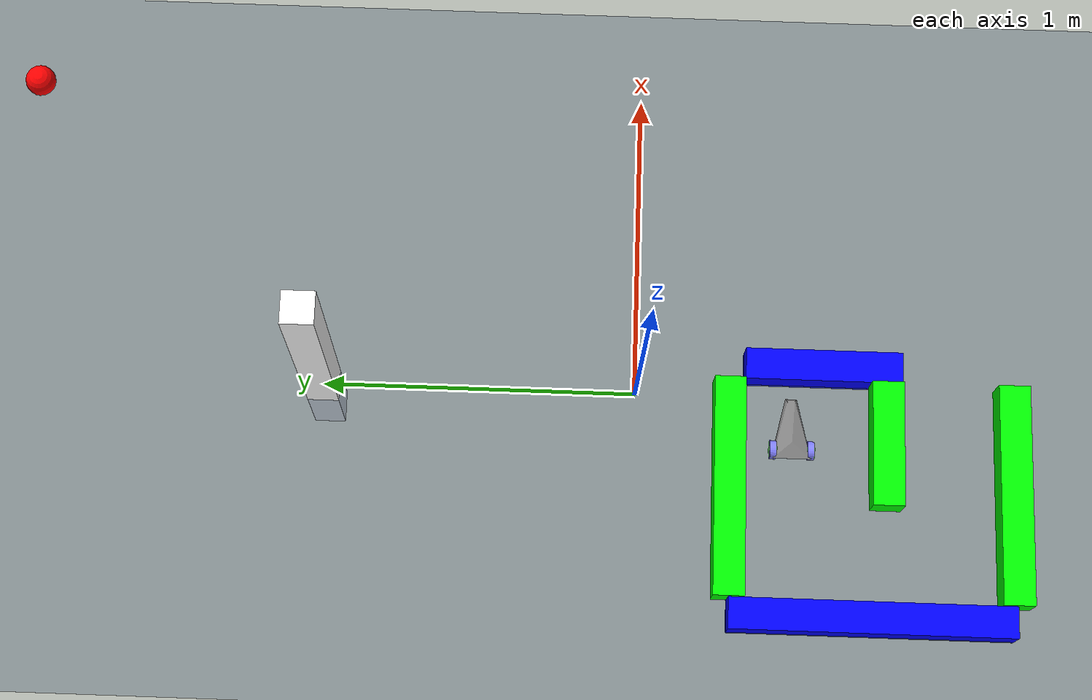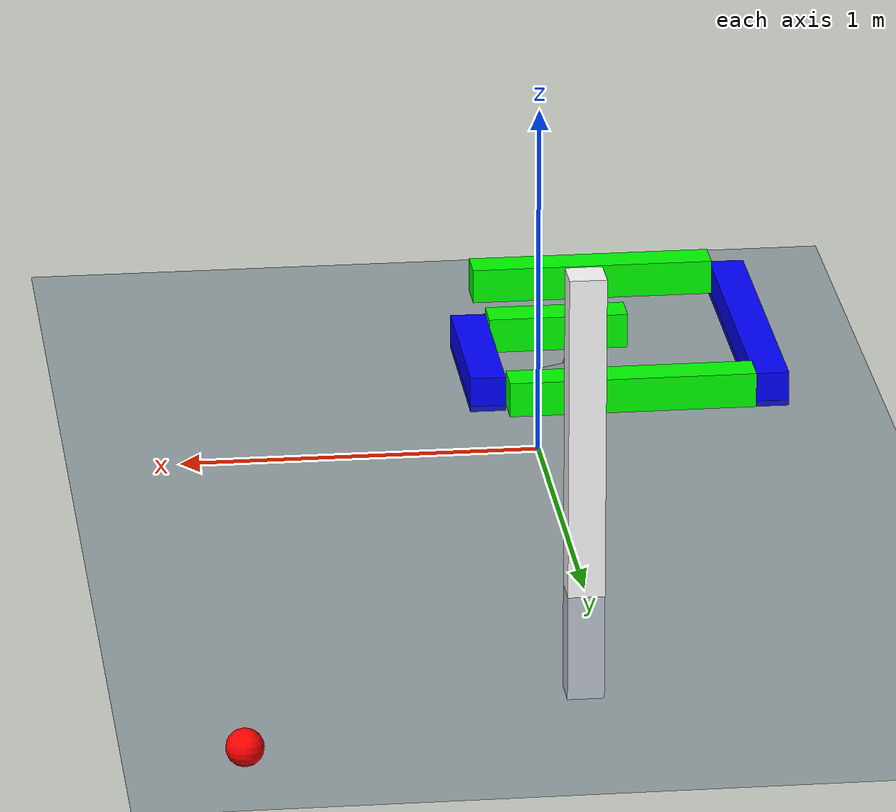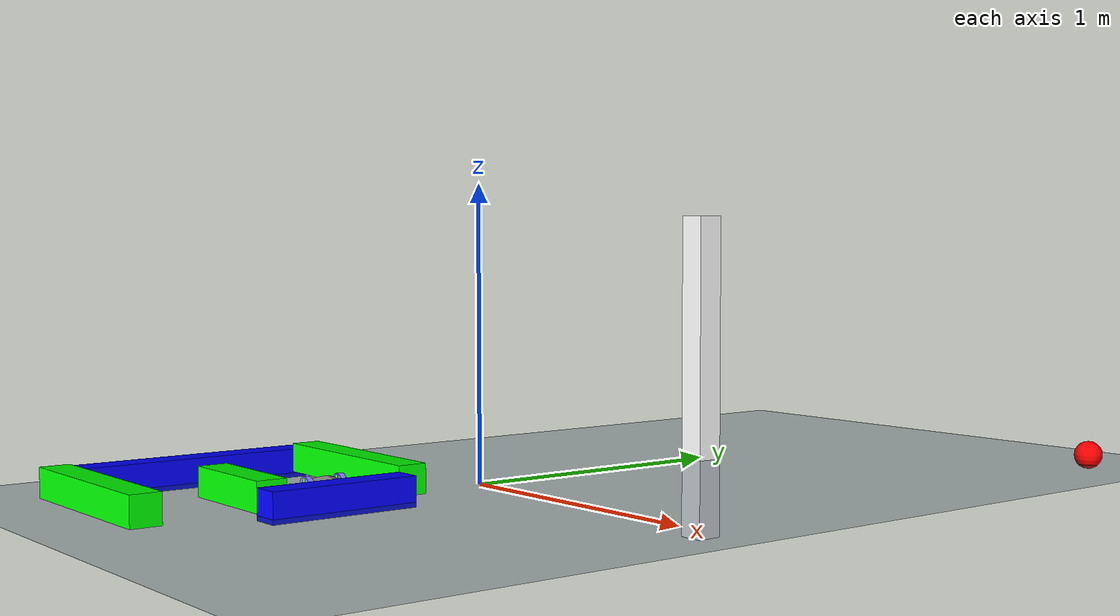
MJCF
<mujoco>
  <compiler autolimits="true"/>

  <asset>
    <texture name="grid" type="2d" builtin="checker" width="512" height="512" rgb1=".1 .2 .3" rgb2=".2 .3 .4"/>
    <material name="grid" texture="grid" texrepeat="1 1" texuniform="true" reflectance=".2"/>
    <mesh name="chasis" scale=".01 .006 .0015" vertex=" 9   2   0
              -10  10  10
               9  -2   0
               10  3  -10
               10 -3  -10
              -8   10 -10
              -10 -10  10
              -8  -10 -10
              -5   0   20"/>
  </asset>

  <default>
    <joint damping=".03" actuatorfrcrange="-0.5 0.5"/>
    <default class="wheel">
      <geom type="cylinder" size=".03 .01" rgba=".5 .5 1 1"/>
    </default>
    <default class="decor">
      <site type="box" rgba=".5 1 .5 1"/>
    </default>
  </default>

  <worldbody>
    <light name="light1" pos="0 0 2"/>
    <light name="light2" pos="0 2 2"/>
    <light name="light3" pos="2 0 2"/>

    <geom type="plane" size="3 3 .01" material="grid"/>
    <body name="car" pos="-0.1 -0.5 .03">
      <freejoint/>
      <light name="top light" pos="0 0 2" mode="trackcom" diffuse=".4 .4 .4"/>
      <geom name="chasis" type="mesh" mesh="chasis"/>
      <geom name="front wheel" pos=".08 0 -.015" type="sphere" size=".015" condim="1" priority="1"/>
      <light name="front light" pos=".1 0 .02" dir="2 0 -1" diffuse="1 1 1"/>
      <camera name="dash cam" pos="-0.1 0 0.05" fovy="90" euler="180 -80 90"/>
      <body name="left wheel" pos="-.07 .06 0" zaxis="0 1 0">
        <joint name="left"/>
        <geom class="wheel"/>
        <site class="decor" size=".006 .025 .012"/>
        <site class="decor" size=".025 .006 .012"/>
      </body>
      <body name="right wheel" pos="-.07 -.06 0" zaxis="0 1 0">
        <joint name="right"/>
        <geom class="wheel"/>
        <site class="decor" size=".006 .025 .012"/>
        <site class="decor" size=".025 .006 .012"/>
      </body>
    </body>
    <body name="target-ball" pos="1 2 .03">
      <inertial pos="0 0 0" mass="1" diaginertia="1 1 1"/>
      <freejoint/>
      <geom type="sphere" size=".05" rgba="1 0 0 1" friction="0.6 0.3 10"/>
    </body>
    <body pos="-0.3 -0.3 .05">
      <geom type="box" size=".35 .05 .05" rgba="0 1 0 1"/>
    </body>
    <body pos="-0.7 -0.75 .03">
      <geom type="box" size=".05 .45 .05" rgba="0 0 1 1"/>
    </body>
    <body pos="-0.3 -1.2 .05">
      <geom type="box" size=".35 .05 .05" rgba="0 1 0 1"/>
    </body>
    <body pos="0.1 -0.6 .03">
      <geom type="box" size=".05 .25 .05" rgba="0 0 1 1"/>
    </body>
    <body pos="-0.15 -0.8 .05">
      <geom type="box" size=".2 .05 .05" rgba="0 1 0 1"/>
    </body>
    <body pos="0 1 .3">
      <geom type="box" size=".05 .05 .6" rgba="1 1 1 1"/>
    </body>
  </worldbody>

  <tendon>
    <fixed name="forward">
      <joint joint="left" coef=".5"/>
      <joint joint="right" coef=".5"/>
    </fixed>
    <fixed name="turn">
      <joint joint="left" coef="-.5"/>
      <joint joint="right" coef=".5"/>
    </fixed>
  </tendon>

  <actuator>
    <motor name="forward" tendon="forward" ctrlrange="-1 1"/>
    <motor name="turn" tendon="turn" ctrlrange="-1 1"/>
  </actuator>

  <sensor>
    <jointactuatorfrc name="right" joint="right"/>
    <jointactuatorfrc name="left" joint="left"/>
  </sensor>
</mujoco>
